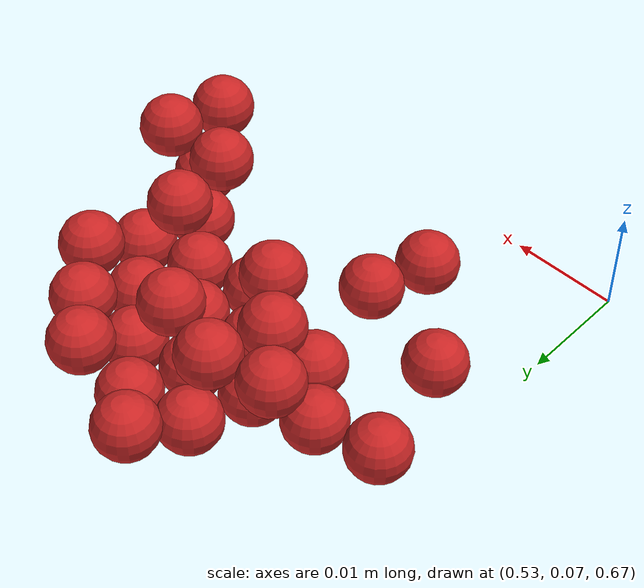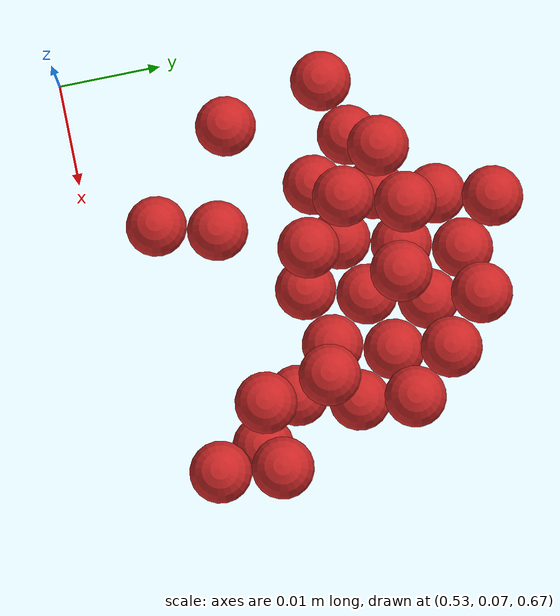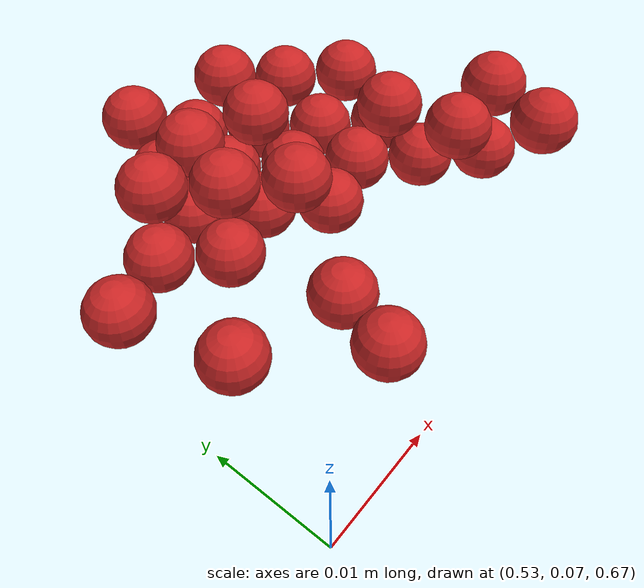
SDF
<sdf version="1.4">
 <world name="default">
  <model name="ground_plane">
   <static>1</static>
   <link name="link">
    <collision name="collision">
     <geometry><plane><normal>0 0 1</normal><size>100 100</size></plane></geometry>
     <surface><friction><ode><mu>100</mu><mu2>50</mu2></ode></friction></surface>
    </collision>
    <visual name="visual">
     <cast_shadows>0</cast_shadows>
     <geometry><plane><normal>0 0 1</normal><size>100 100</size></plane></geometry>
     <material>
      <script><uri>file://media/materials/scripts/gazebo.material</uri><name>Gazebo/Grey</name></script>
     </material>
    </visual>
    <velocity_decay><linear>0</linear><angular>0</angular></velocity_decay>
   </link>
  </model>
  <model name="sphere3">
   <pose>0.017734 0.010482 -0.021147 -0.000144 0.000294 -0.000125</pose>
   <link name="link">
    <pose>0.552545 0.067517 0.694885 0 -0 0</pose>
    <inertial>
     <mass>1e-08</mass>
     <inertia><ixx>4e-08</ixx><ixy>0</ixy><ixz>0</ixz><iyy>4e-08</iyy><iyz>0</iyz><izz>4e-08</izz></inertia>
    </inertial>
    <collision name="collision">
     <surface>
      <bounce><restitution_coefficient>0.5</restitution_coefficient><threshold>0</threshold></bounce>
      <contact><ode><kp>1e+08</kp><kd>1</kd></ode></contact>
      <friction><ode><mu>1e-06</mu><mu2>1e-06</mu2></ode></friction>
     </surface>
     <geometry><sphere><radius>0.003</radius></sphere></geometry>
    </collision>
    <visual name="visual">
     <geometry><sphere><radius>0.003</radius></sphere></geometry>
     <material>
      <script><uri>file://media/materials/scripts/gazebo.material</uri><name>Gazebo/Red</name></script>
     </material>
    </visual>
    <velocity_decay><linear>0</linear><angular>0</angular></velocity_decay>
   </link>
   <static>0</static>
  </model>
  <model name="sphere7">
   <pose>0.018692 0.010598 -0.02054 0.000226 0.000135 -8.8e-05</pose>
   <link name="link">
    <pose>0.552545 0.073517 0.694885 0 -0 0</pose>
    <inertial>
     <mass>1e-08</mass>
     <inertia><ixx>4e-08</ixx><ixy>0</ixy><ixz>0</ixz><iyy>4e-08</iyy><iyz>0</iyz><izz>4e-08</izz></inertia>
    </inertial>
    <collision name="collision">
     <surface>
      <bounce><restitution_coefficient>0.5</restitution_coefficient><threshold>0</threshold></bounce>
      <contact><ode><kp>1e+08</kp><kd>1</kd></ode></contact>
      <friction><ode><mu>1e-06</mu><mu2>1e-06</mu2></ode></friction>
     </surface>
     <geometry><sphere><radius>0.003</radius></sphere></geometry>
    </collision>
    <visual name="visual">
     <geometry><sphere><radius>0.003</radius></sphere></geometry>
     <material>
      <script><uri>file://media/materials/scripts/gazebo.material</uri><name>Gazebo/Red</name></script>
     </material>
    </visual>
    <velocity_decay><linear>0</linear><angular>0</angular></velocity_decay>
   </link>
   <static>0</static>
  </model>
  <model name="sphere9">
   <pose>0.004028 0.012873 -0.026133 -4.2e-05 -0.000319 1.65436e-24</pose>
   <link name="link">
    <pose>0.540545 0.079517 0.694885 0 -0 0</pose>
    <inertial>
     <mass>1e-08</mass>
     <inertia><ixx>4e-08</ixx><ixy>0</ixy><ixz>0</ixz><iyy>4e-08</iyy><iyz>0</iyz><izz>4e-08</izz></inertia>
    </inertial>
    <collision name="collision">
     <surface>
      <bounce><restitution_coefficient>0.5</restitution_coefficient><threshold>0</threshold></bounce>
      <contact><ode><kp>1e+08</kp><kd>1</kd></ode></contact>
      <friction><ode><mu>1e-06</mu><mu2>1e-06</mu2></ode></friction>
     </surface>
     <geometry><sphere><radius>0.003</radius></sphere></geometry>
    </collision>
    <visual name="visual">
     <geometry><sphere><radius>0.003</radius></sphere></geometry>
     <material>
      <script><uri>file://media/materials/scripts/gazebo.material</uri><name>Gazebo/Red</name></script>
     </material>
    </visual>
    <velocity_decay><linear>0</linear><angular>0</angular></velocity_decay>
   </link>
   <static>0</static>
  </model>
  <model name="sphere11">
   <pose>0.013849 0.017939 -0.022685 -9.7e-05 0.000891 0.000489</pose>
   <link name="link">
    <pose>0.552545 0.079517 0.694885 0 -0 0</pose>
    <inertial>
     <mass>1e-08</mass>
     <inertia><ixx>4e-08</ixx><ixy>0</ixy><ixz>0</ixz><iyy>4e-08</iyy><iyz>0</iyz><izz>4e-08</izz></inertia>
    </inertial>
    <collision name="collision">
     <surface>
      <bounce><restitution_coefficient>0.5</restitution_coefficient><threshold>0</threshold></bounce>
      <contact><ode><kp>1e+08</kp><kd>1</kd></ode></contact>
      <friction><ode><mu>1e-06</mu><mu2>1e-06</mu2></ode></friction>
     </surface>
     <geometry><sphere><radius>0.003</radius></sphere></geometry>
    </collision>
    <visual name="visual">
     <geometry><sphere><radius>0.003</radius></sphere></geometry>
     <material>
      <script><uri>file://media/materials/scripts/gazebo.material</uri><name>Gazebo/Red</name></script>
     </material>
    </visual>
    <velocity_decay><linear>0</linear><angular>0</angular></velocity_decay>
   </link>
   <static>0</static>
  </model>
  <model name="sphere14">
   <pose>0.002752 0.023182 -0.023402 -0.000726 1.1e-05 -8.3e-05</pose>
   <link name="link">
    <pose>0.546545 0.085517 0.694885 0 -0 0</pose>
    <inertial>
     <mass>1e-08</mass>
     <inertia><ixx>4e-08</ixx><ixy>0</ixy><ixz>0</ixz><iyy>4e-08</iyy><iyz>0</iyz><izz>4e-08</izz></inertia>
    </inertial>
    <collision name="collision">
     <surface>
      <bounce><restitution_coefficient>0.5</restitution_coefficient><threshold>0</threshold></bounce>
      <contact><ode><kp>1e+08</kp><kd>1</kd></ode></contact>
      <friction><ode><mu>1e-06</mu><mu2>1e-06</mu2></ode></friction>
     </surface>
     <geometry><sphere><radius>0.003</radius></sphere></geometry>
    </collision>
    <visual name="visual">
     <geometry><sphere><radius>0.003</radius></sphere></geometry>
     <material>
      <script><uri>file://media/materials/scripts/gazebo.material</uri><name>Gazebo/Red</name></script>
     </material>
    </visual>
    <velocity_decay><linear>0</linear><angular>0</angular></velocity_decay>
   </link>
   <static>0</static>
  </model>
  <model name="sphere15">
   <pose>0.010319 0.016833 -0.023531 1.2e-05 8.4e-05 -0.000222</pose>
   <link name="link">
    <pose>0.552545 0.085517 0.694885 0 -0 0</pose>
    <inertial>
     <mass>1e-08</mass>
     <inertia><ixx>4e-08</ixx><ixy>0</ixy><ixz>0</ixz><iyy>4e-08</iyy><iyz>0</iyz><izz>4e-08</izz></inertia>
    </inertial>
    <collision name="collision">
     <surface>
      <bounce><restitution_coefficient>0.5</restitution_coefficient><threshold>0</threshold></bounce>
      <contact><ode><kp>1e+08</kp><kd>1</kd></ode></contact>
      <friction><ode><mu>1e-06</mu><mu2>1e-06</mu2></ode></friction>
     </surface>
     <geometry><sphere><radius>0.003</radius></sphere></geometry>
    </collision>
    <visual name="visual">
     <geometry><sphere><radius>0.003</radius></sphere></geometry>
     <material>
      <script><uri>file://media/materials/scripts/gazebo.material</uri><name>Gazebo/Red</name></script>
     </material>
    </visual>
    <velocity_decay><linear>0</linear><angular>0</angular></velocity_decay>
   </link>
   <static>0</static>
  </model>
  <model name="sphere26">
   <pose>0.007331 0.010245 -0.031635 0.000214 0.000681 0</pose>
   <link name="link">
    <pose>0.546545 0.079517 0.700885 0 -0 0</pose>
    <inertial>
     <mass>1e-08</mass>
     <inertia><ixx>4e-08</ixx><ixy>0</ixy><ixz>0</ixz><iyy>4e-08</iyy><iyz>0</iyz><izz>4e-08</izz></inertia>
    </inertial>
    <collision name="collision">
     <surface>
      <bounce><restitution_coefficient>0.5</restitution_coefficient><threshold>0</threshold></bounce>
      <contact><ode><kp>1e+08</kp><kd>1</kd></ode></contact>
      <friction><ode><mu>1e-06</mu><mu2>1e-06</mu2></ode></friction>
     </surface>
     <geometry><sphere><radius>0.003</radius></sphere></geometry>
    </collision>
    <visual name="visual">
     <geometry><sphere><radius>0.003</radius></sphere></geometry>
     <material>
      <script><uri>file://media/materials/scripts/gazebo.material</uri><name>Gazebo/Red</name></script>
     </material>
    </visual>
    <velocity_decay><linear>0</linear><angular>0</angular></velocity_decay>
   </link>
   <static>0</static>
  </model>
  <model name="sphere31">
   <pose>0.009113 0.011439 -0.032021 0.0001 0.000183 -3e-06</pose>
   <link name="link">
    <pose>0.552545 0.085517 0.700885 0 -0 0</pose>
    <inertial>
     <mass>1e-08</mass>
     <inertia><ixx>4e-08</ixx><ixy>0</ixy><ixz>0</ixz><iyy>4e-08</iyy><iyz>0</iyz><izz>4e-08</izz></inertia>
    </inertial>
    <collision name="collision">
     <surface>
      <bounce><restitution_coefficient>0.5</restitution_coefficient><threshold>0</threshold></bounce>
      <contact><ode><kp>1e+08</kp><kd>1</kd></ode></contact>
      <friction><ode><mu>1e-06</mu><mu2>1e-06</mu2></ode></friction>
     </surface>
     <geometry><sphere><radius>0.003</radius></sphere></geometry>
    </collision>
    <visual name="visual">
     <geometry><sphere><radius>0.003</radius></sphere></geometry>
     <material>
      <script><uri>file://media/materials/scripts/gazebo.material</uri><name>Gazebo/Red</name></script>
     </material>
    </visual>
    <velocity_decay><linear>0</linear><angular>0</angular></velocity_decay>
   </link>
   <static>0</static>
  </model>
  <model name="sphere35">
   <pose>0.012338 0.016035 -0.033068 0 -0 0</pose>
   <link name="link">
    <pose>0.552545 0.067517 0.706885 0 -0 0</pose>
    <inertial>
     <mass>1e-08</mass>
     <inertia><ixx>4e-08</ixx><ixy>0</ixy><ixz>0</ixz><iyy>4e-08</iyy><iyz>0</iyz><izz>4e-08</izz></inertia>
    </inertial>
    <collision name="collision">
     <surface>
      <bounce><restitution_coefficient>0.5</restitution_coefficient><threshold>0</threshold></bounce>
      <contact><ode><kp>1e+08</kp><kd>1</kd></ode></contact>
      <friction><ode><mu>1e-06</mu><mu2>1e-06</mu2></ode></friction>
     </surface>
     <geometry><sphere><radius>0.003</radius></sphere></geometry>
    </collision>
    <visual name="visual">
     <geometry><sphere><radius>0.003</radius></sphere></geometry>
     <material>
      <script><uri>file://media/materials/scripts/gazebo.material</uri><name>Gazebo/Red</name></script>
     </material>
    </visual>
    <velocity_decay><linear>0</linear><angular>0</angular></velocity_decay>
   </link>
   <static>0</static>
  </model>
  <model name="sphere39">
   <pose>0.016184 0.008938 -0.037876 -0.000186 -0.000299 -0.000136</pose>
   <link name="link">
    <pose>0.552545 0.073517 0.706885 0 -0 0</pose>
    <inertial>
     <mass>1e-08</mass>
     <inertia><ixx>4e-08</ixx><ixy>0</ixy><ixz>0</ixz><iyy>4e-08</iyy><iyz>0</iyz><izz>4e-08</izz></inertia>
    </inertial>
    <collision name="collision">
     <surface>
      <bounce><restitution_coefficient>0.5</restitution_coefficient><threshold>0</threshold></bounce>
      <contact><ode><kp>1e+08</kp><kd>1</kd></ode></contact>
      <friction><ode><mu>1e-06</mu><mu2>1e-06</mu2></ode></friction>
     </surface>
     <geometry><sphere><radius>0.003</radius></sphere></geometry>
    </collision>
    <visual name="visual">
     <geometry><sphere><radius>0.003</radius></sphere></geometry>
     <material>
      <script><uri>file://media/materials/scripts/gazebo.material</uri><name>Gazebo/Red</name></script>
     </material>
    </visual>
    <velocity_decay><linear>0</linear><angular>0</angular></velocity_decay>
   </link>
   <static>0</static>
  </model>
  <model name="sphere41">
   <pose>-0.000329 0.017163 -0.03798 -3.9e-05 -8.3e-05 0</pose>
   <link name="link">
    <pose>0.540545 0.079517 0.706885 0 -0 0</pose>
    <inertial>
     <mass>1e-08</mass>
     <inertia><ixx>4e-08</ixx><ixy>0</ixy><ixz>0</ixz><iyy>4e-08</iyy><iyz>0</iyz><izz>4e-08</izz></inertia>
    </inertial>
    <collision name="collision">
     <surface>
      <bounce><restitution_coefficient>0.5</restitution_coefficient><threshold>0</threshold></bounce>
      <contact><ode><kp>1e+08</kp><kd>1</kd></ode></contact>
      <friction><ode><mu>1e-06</mu><mu2>1e-06</mu2></ode></friction>
     </surface>
     <geometry><sphere><radius>0.003</radius></sphere></geometry>
    </collision>
    <visual name="visual">
     <geometry><sphere><radius>0.003</radius></sphere></geometry>
     <material>
      <script><uri>file://media/materials/scripts/gazebo.material</uri><name>Gazebo/Red</name></script>
     </material>
    </visual>
    <velocity_decay><linear>0</linear><angular>0</angular></velocity_decay>
   </link>
   <static>0</static>
  </model>
  <model name="sphere42">
   <pose>-0.000703 0.018667 -0.037872 -2e-05 0.00017 4.1359e-25</pose>
   <link name="link">
    <pose>0.546545 0.079517 0.706885 0 -0 0</pose>
    <inertial>
     <mass>1e-08</mass>
     <inertia><ixx>4e-08</ixx><ixy>0</ixy><ixz>0</ixz><iyy>4e-08</iyy><iyz>0</iyz><izz>4e-08</izz></inertia>
    </inertial>
    <collision name="collision">
     <surface>
      <bounce><restitution_coefficient>0.5</restitution_coefficient><threshold>0</threshold></bounce>
      <contact><ode><kp>1e+08</kp><kd>1</kd></ode></contact>
      <friction><ode><mu>1e-06</mu><mu2>1e-06</mu2></ode></friction>
     </surface>
     <geometry><sphere><radius>0.003</radius></sphere></geometry>
    </collision>
    <visual name="visual">
     <geometry><sphere><radius>0.003</radius></sphere></geometry>
     <material>
      <script><uri>file://media/materials/scripts/gazebo.material</uri><name>Gazebo/Red</name></script>
     </material>
    </visual>
    <velocity_decay><linear>0</linear><angular>0</angular></velocity_decay>
   </link>
   <static>0</static>
  </model>
  <model name="sphere43">
   <pose>0.013343 0.01334 -0.037932 0.000344 0.000123 -4.5e-05</pose>
   <link name="link">
    <pose>0.552545 0.079517 0.706885 0 -0 0</pose>
    <inertial>
     <mass>1e-08</mass>
     <inertia><ixx>4e-08</ixx><ixy>0</ixy><ixz>0</ixz><iyy>4e-08</iyy><iyz>0</iyz><izz>4e-08</izz></inertia>
    </inertial>
    <collision name="collision">
     <surface>
      <bounce><restitution_coefficient>0.5</restitution_coefficient><threshold>0</threshold></bounce>
      <contact><ode><kp>1e+08</kp><kd>1</kd></ode></contact>
      <friction><ode><mu>1e-06</mu><mu2>1e-06</mu2></ode></friction>
     </surface>
     <geometry><sphere><radius>0.003</radius></sphere></geometry>
    </collision>
    <visual name="visual">
     <geometry><sphere><radius>0.003</radius></sphere></geometry>
     <material>
      <script><uri>file://media/materials/scripts/gazebo.material</uri><name>Gazebo/Red</name></script>
     </material>
    </visual>
    <velocity_decay><linear>0</linear><angular>0</angular></velocity_decay>
   </link>
   <static>0</static>
  </model>
  <model name="sphere47">
   <pose>0.005965 0.020591 -0.034751 7.5e-05 -5.3e-05 9.5e-05</pose>
   <link name="link">
    <pose>0.552545 0.085517 0.706885 0 -0 0</pose>
    <inertial>
     <mass>1e-08</mass>
     <inertia><ixx>4e-08</ixx><ixy>0</ixy><ixz>0</ixz><iyy>4e-08</iyy><iyz>0</iyz><izz>4e-08</izz></inertia>
    </inertial>
    <collision name="collision">
     <surface>
      <bounce><restitution_coefficient>0.5</restitution_coefficient><threshold>0</threshold></bounce>
      <contact><ode><kp>1e+08</kp><kd>1</kd></ode></contact>
      <friction><ode><mu>1e-06</mu><mu2>1e-06</mu2></ode></friction>
     </surface>
     <geometry><sphere><radius>0.003</radius></sphere></geometry>
    </collision>
    <visual name="visual">
     <geometry><sphere><radius>0.003</radius></sphere></geometry>
     <material>
      <script><uri>file://media/materials/scripts/gazebo.material</uri><name>Gazebo/Red</name></script>
     </material>
    </visual>
    <velocity_decay><linear>0</linear><angular>0</angular></velocity_decay>
   </link>
   <static>0</static>
  </model>
  <model name="sphere58">
   <pose>0.003733 0.014275 -0.044015 -0.00016 -0.00016 3.30872e-24</pose>
   <link name="link">
    <pose>0.546545 0.079517 0.712885 0 -0 0</pose>
    <inertial>
     <mass>1e-08</mass>
     <inertia><ixx>4e-08</ixx><ixy>0</ixy><ixz>0</ixz><iyy>4e-08</iyy><iyz>0</iyz><izz>4e-08</izz></inertia>
    </inertial>
    <collision name="collision">
     <surface>
      <bounce><restitution_coefficient>0.5</restitution_coefficient><threshold>0</threshold></bounce>
      <contact><ode><kp>1e+08</kp><kd>1</kd></ode></contact>
      <friction><ode><mu>1e-06</mu><mu2>1e-06</mu2></ode></friction>
     </surface>
     <geometry><sphere><radius>0.003</radius></sphere></geometry>
    </collision>
    <visual name="visual">
     <geometry><sphere><radius>0.003</radius></sphere></geometry>
     <material>
      <script><uri>file://media/materials/scripts/gazebo.material</uri><name>Gazebo/Red</name></script>
     </material>
    </visual>
    <velocity_decay><linear>0</linear><angular>0</angular></velocity_decay>
   </link>
   <static>0</static>
  </model>
  <model name="sphere59">
   <pose>0.007684 0.011347 -0.044025 -0.000319 -8.8e-05 3.30872e-24</pose>
   <link name="link">
    <pose>0.552545 0.079517 0.712885 0 -0 0</pose>
    <inertial>
     <mass>1e-08</mass>
     <inertia><ixx>4e-08</ixx><ixy>0</ixy><ixz>0</ixz><iyy>4e-08</iyy><iyz>0</iyz><izz>4e-08</izz></inertia>
    </inertial>
    <collision name="collision">
     <surface>
      <bounce><restitution_coefficient>0.5</restitution_coefficient><threshold>0</threshold></bounce>
      <contact><ode><kp>1e+08</kp><kd>1</kd></ode></contact>
      <friction><ode><mu>1e-06</mu><mu2>1e-06</mu2></ode></friction>
     </surface>
     <geometry><sphere><radius>0.003</radius></sphere></geometry>
    </collision>
    <visual name="visual">
     <geometry><sphere><radius>0.003</radius></sphere></geometry>
     <material>
      <script><uri>file://media/materials/scripts/gazebo.material</uri><name>Gazebo/Red</name></script>
     </material>
    </visual>
    <velocity_decay><linear>0</linear><angular>0</angular></velocity_decay>
   </link>
   <static>0</static>
  </model>
  <model name="sphere62">
   <pose>0.001558 0.018281 -0.044327 -0.000231 -0.000729 2.3e-05</pose>
   <link name="link">
    <pose>0.546545 0.085517 0.712885 0 -0 0</pose>
    <inertial>
     <mass>1e-08</mass>
     <inertia><ixx>4e-08</ixx><ixy>0</ixy><ixz>0</ixz><iyy>4e-08</iyy><iyz>0</iyz><izz>4e-08</izz></inertia>
    </inertial>
    <collision name="collision">
     <surface>
      <bounce><restitution_coefficient>0.5</restitution_coefficient><threshold>0</threshold></bounce>
      <contact><ode><kp>1e+08</kp><kd>1</kd></ode></contact>
      <friction><ode><mu>1e-06</mu><mu2>1e-06</mu2></ode></friction>
     </surface>
     <geometry><sphere><radius>0.003</radius></sphere></geometry>
    </collision>
    <visual name="visual">
     <geometry><sphere><radius>0.003</radius></sphere></geometry>
     <material>
      <script><uri>file://media/materials/scripts/gazebo.material</uri><name>Gazebo/Red</name></script>
     </material>
    </visual>
    <velocity_decay><linear>0</linear><angular>0</angular></velocity_decay>
   </link>
   <static>0</static>
  </model>
  <model name="sphere63">
   <pose>0.000496 0.020097 -0.043603 0.000287 0.000506 8.9e-05</pose>
   <link name="link">
    <pose>0.552545 0.085517 0.712885 0 -0 0</pose>
    <inertial>
     <mass>1e-08</mass>
     <inertia><ixx>4e-08</ixx><ixy>0</ixy><ixz>0</ixz><iyy>4e-08</iyy><iyz>0</iyz><izz>4e-08</izz></inertia>
    </inertial>
    <collision name="collision">
     <surface>
      <bounce><restitution_coefficient>0.5</restitution_coefficient><threshold>0</threshold></bounce>
      <contact><ode><kp>1e+08</kp><kd>1</kd></ode></contact>
      <friction><ode><mu>1e-06</mu><mu2>1e-06</mu2></ode></friction>
     </surface>
     <geometry><sphere><radius>0.003</radius></sphere></geometry>
    </collision>
    <visual name="visual">
     <geometry><sphere><radius>0.003</radius></sphere></geometry>
     <material>
      <script><uri>file://media/materials/scripts/gazebo.material</uri><name>Gazebo/Red</name></script>
     </material>
    </visual>
    <velocity_decay><linear>0</linear><angular>0</angular></velocity_decay>
   </link>
   <static>0</static>
  </model>
  <model name="sphere68">
   <pose>0.002354 0.011518 -0.049911 -0.000164 2.8e-05 0</pose>
   <link name="link">
    <pose>0.534545 0.073517 0.718885 0 -0 0</pose>
    <inertial>
     <mass>1e-08</mass>
     <inertia><ixx>4e-08</ixx><ixy>0</ixy><ixz>0</ixz><iyy>4e-08</iyy><iyz>0</iyz><izz>4e-08</izz></inertia>
    </inertial>
    <collision name="collision">
     <surface>
      <bounce><restitution_coefficient>0.5</restitution_coefficient><threshold>0</threshold></bounce>
      <contact><ode><kp>1e+08</kp><kd>1</kd></ode></contact>
      <friction><ode><mu>1e-06</mu><mu2>1e-06</mu2></ode></friction>
     </surface>
     <geometry><sphere><radius>0.003</radius></sphere></geometry>
    </collision>
    <visual name="visual">
     <geometry><sphere><radius>0.003</radius></sphere></geometry>
     <material>
      <script><uri>file://media/materials/scripts/gazebo.material</uri><name>Gazebo/Red</name></script>
     </material>
    </visual>
    <velocity_decay><linear>0</linear><angular>0</angular></velocity_decay>
   </link>
   <static>0</static>
  </model>
  <model name="sphere69">
   <pose>0.006361 0.008845 -0.049933 2.2e-05 3e-05 0</pose>
   <link name="link">
    <pose>0.540545 0.073517 0.718885 0 -0 0</pose>
    <inertial>
     <mass>1e-08</mass>
     <inertia><ixx>4e-08</ixx><ixy>0</ixy><ixz>0</ixz><iyy>4e-08</iyy><iyz>0</iyz><izz>4e-08</izz></inertia>
    </inertial>
    <collision name="collision">
     <surface>
      <bounce><restitution_coefficient>0.5</restitution_coefficient><threshold>0</threshold></bounce>
      <contact><ode><kp>1e+08</kp><kd>1</kd></ode></contact>
      <friction><ode><mu>1e-06</mu><mu2>1e-06</mu2></ode></friction>
     </surface>
     <geometry><sphere><radius>0.003</radius></sphere></geometry>
    </collision>
    <visual name="visual">
     <geometry><sphere><radius>0.003</radius></sphere></geometry>
     <material>
      <script><uri>file://media/materials/scripts/gazebo.material</uri><name>Gazebo/Red</name></script>
     </material>
    </visual>
    <velocity_decay><linear>0</linear><angular>0</angular></velocity_decay>
   </link>
   <static>0</static>
  </model>
  <model name="sphere71">
   <pose>0.011764 0.013661 -0.050096 0.000536 4.2e-05 -3.30872e-24</pose>
   <link name="link">
    <pose>0.552545 0.073517 0.718885 0 -0 0</pose>
    <inertial>
     <mass>1e-08</mass>
     <inertia><ixx>4e-08</ixx><ixy>0</ixy><ixz>0</ixz><iyy>4e-08</iyy><iyz>0</iyz><izz>4e-08</izz></inertia>
    </inertial>
    <collision name="collision">
     <surface>
      <bounce><restitution_coefficient>0.5</restitution_coefficient><threshold>0</threshold></bounce>
      <contact><ode><kp>1e+08</kp><kd>1</kd></ode></contact>
      <friction><ode><mu>1e-06</mu><mu2>1e-06</mu2></ode></friction>
     </surface>
     <geometry><sphere><radius>0.003</radius></sphere></geometry>
    </collision>
    <visual name="visual">
     <geometry><sphere><radius>0.003</radius></sphere></geometry>
     <material>
      <script><uri>file://media/materials/scripts/gazebo.material</uri><name>Gazebo/Red</name></script>
     </material>
    </visual>
    <velocity_decay><linear>0</linear><angular>0</angular></velocity_decay>
   </link>
   <static>0</static>
  </model>
  <model name="sphere73">
   <pose>0.00628 0.015306 -0.045071 0 -0 0</pose>
   <link name="link">
    <pose>0.540545 0.079517 0.718885 0 -0 0</pose>
    <inertial>
     <mass>1e-08</mass>
     <inertia><ixx>4e-08</ixx><ixy>0</ixy><ixz>0</ixz><iyy>4e-08</iyy><iyz>0</iyz><izz>4e-08</izz></inertia>
    </inertial>
    <collision name="collision">
     <surface>
      <bounce><restitution_coefficient>0.5</restitution_coefficient><threshold>0</threshold></bounce>
      <contact><ode><kp>1e+08</kp><kd>1</kd></ode></contact>
      <friction><ode><mu>1e-06</mu><mu2>1e-06</mu2></ode></friction>
     </surface>
     <geometry><sphere><radius>0.003</radius></sphere></geometry>
    </collision>
    <visual name="visual">
     <geometry><sphere><radius>0.003</radius></sphere></geometry>
     <material>
      <script><uri>file://media/materials/scripts/gazebo.material</uri><name>Gazebo/Red</name></script>
     </material>
    </visual>
    <velocity_decay><linear>0</linear><angular>0</angular></velocity_decay>
   </link>
   <static>0</static>
  </model>
  <model name="sphere74">
   <pose>0.009365 0.015879 -0.049897 1.3e-05 9.5e-05 2.06795e-25</pose>
   <link name="link">
    <pose>0.546545 0.079517 0.718885 0 -0 0</pose>
    <inertial>
     <mass>1e-08</mass>
     <inertia><ixx>4e-08</ixx><ixy>0</ixy><ixz>0</ixz><iyy>4e-08</iyy><iyz>0</iyz><izz>4e-08</izz></inertia>
    </inertial>
    <collision name="collision">
     <surface>
      <bounce><restitution_coefficient>0.5</restitution_coefficient><threshold>0</threshold></bounce>
      <contact><ode><kp>1e+08</kp><kd>1</kd></ode></contact>
      <friction><ode><mu>1e-06</mu><mu2>1e-06</mu2></ode></friction>
     </surface>
     <geometry><sphere><radius>0.003</radius></sphere></geometry>
    </collision>
    <visual name="visual">
     <geometry><sphere><radius>0.003</radius></sphere></geometry>
     <material>
      <script><uri>file://media/materials/scripts/gazebo.material</uri><name>Gazebo/Red</name></script>
     </material>
    </visual>
    <velocity_decay><linear>0</linear><angular>0</angular></velocity_decay>
   </link>
   <static>0</static>
  </model>
  <model name="sphere75">
   <pose>0.010951 0.010553 -0.045125 0 -0 0</pose>
   <link name="link">
    <pose>0.552545 0.079517 0.718885 0 -0 0</pose>
    <inertial>
     <mass>1e-08</mass>
     <inertia><ixx>4e-08</ixx><ixy>0</ixy><ixz>0</ixz><iyy>4e-08</iyy><iyz>0</iyz><izz>4e-08</izz></inertia>
    </inertial>
    <collision name="collision">
     <surface>
      <bounce><restitution_coefficient>0.5</restitution_coefficient><threshold>0</threshold></bounce>
      <contact><ode><kp>1e+08</kp><kd>1</kd></ode></contact>
      <friction><ode><mu>1e-06</mu><mu2>1e-06</mu2></ode></friction>
     </surface>
     <geometry><sphere><radius>0.003</radius></sphere></geometry>
    </collision>
    <visual name="visual">
     <geometry><sphere><radius>0.003</radius></sphere></geometry>
     <material>
      <script><uri>file://media/materials/scripts/gazebo.material</uri><name>Gazebo/Red</name></script>
     </material>
    </visual>
    <velocity_decay><linear>0</linear><angular>0</angular></velocity_decay>
   </link>
   <static>0</static>
  </model>
  <model name="sphere76">
   <pose>-0.000391 0.009508 -0.049849 -0.000269 0.000264 1.32349e-23</pose>
   <link name="link">
    <pose>0.534545 0.085517 0.718885 0 -0 0</pose>
    <inertial>
     <mass>1e-08</mass>
     <inertia><ixx>4e-08</ixx><ixy>0</ixy><ixz>0</ixz><iyy>4e-08</iyy><iyz>0</iyz><izz>4e-08</izz></inertia>
    </inertial>
    <collision name="collision">
     <surface>
      <bounce><restitution_coefficient>0.5</restitution_coefficient><threshold>0</threshold></bounce>
      <contact><ode><kp>1e+08</kp><kd>1</kd></ode></contact>
      <friction><ode><mu>1e-06</mu><mu2>1e-06</mu2></ode></friction>
     </surface>
     <geometry><sphere><radius>0.003</radius></sphere></geometry>
    </collision>
    <visual name="visual">
     <geometry><sphere><radius>0.003</radius></sphere></geometry>
     <material>
      <script><uri>file://media/materials/scripts/gazebo.material</uri><name>Gazebo/Red</name></script>
     </material>
    </visual>
    <velocity_decay><linear>0</linear><angular>0</angular></velocity_decay>
   </link>
   <static>0</static>
  </model>
  <model name="sphere77">
   <pose>0.002104 0.013615 -0.045048 0 -0 0</pose>
   <link name="link">
    <pose>0.540545 0.085517 0.718885 0 -0 0</pose>
    <inertial>
     <mass>1e-08</mass>
     <inertia><ixx>4e-08</ixx><ixy>0</ixy><ixz>0</ixz><iyy>4e-08</iyy><iyz>0</iyz><izz>4e-08</izz></inertia>
    </inertial>
    <collision name="collision">
     <surface>
      <bounce><restitution_coefficient>0.5</restitution_coefficient><threshold>0</threshold></bounce>
      <contact><ode><kp>1e+08</kp><kd>1</kd></ode></contact>
      <friction><ode><mu>1e-06</mu><mu2>1e-06</mu2></ode></friction>
     </surface>
     <geometry><sphere><radius>0.003</radius></sphere></geometry>
    </collision>
    <visual name="visual">
     <geometry><sphere><radius>0.003</radius></sphere></geometry>
     <material>
      <script><uri>file://media/materials/scripts/gazebo.material</uri><name>Gazebo/Red</name></script>
     </material>
    </visual>
    <velocity_decay><linear>0</linear><angular>0</angular></velocity_decay>
   </link>
   <static>0</static>
  </model>
  <model name="sphere78">
   <pose>0.001995 0.015063 -0.0451 0 -0 0</pose>
   <link name="link">
    <pose>0.546545 0.085517 0.718885 0 -0 0</pose>
    <inertial>
     <mass>1e-08</mass>
     <inertia><ixx>4e-08</ixx><ixy>0</ixy><ixz>0</ixz><iyy>4e-08</iyy><iyz>0</iyz><izz>4e-08</izz></inertia>
    </inertial>
    <collision name="collision">
     <surface>
      <bounce><restitution_coefficient>0.5</restitution_coefficient><threshold>0</threshold></bounce>
      <contact><ode><kp>1e+08</kp><kd>1</kd></ode></contact>
      <friction><ode><mu>1e-06</mu><mu2>1e-06</mu2></ode></friction>
     </surface>
     <geometry><sphere><radius>0.003</radius></sphere></geometry>
    </collision>
    <visual name="visual">
     <geometry><sphere><radius>0.003</radius></sphere></geometry>
     <material>
      <script><uri>file://media/materials/scripts/gazebo.material</uri><name>Gazebo/Red</name></script>
     </material>
    </visual>
    <velocity_decay><linear>0</linear><angular>0</angular></velocity_decay>
   </link>
   <static>0</static>
  </model>
  <model name="sphere79">
   <pose>0.00558 0.015079 -0.050349 -0.000813 -0.000748 -2.5e-05</pose>
   <link name="link">
    <pose>0.552545 0.085517 0.718885 0 -0 0</pose>
    <inertial>
     <mass>1e-08</mass>
     <inertia><ixx>4e-08</ixx><ixy>0</ixy><ixz>0</ixz><iyy>4e-08</iyy><iyz>0</iyz><izz>4e-08</izz></inertia>
    </inertial>
    <collision name="collision">
     <surface>
      <bounce><restitution_coefficient>0.5</restitution_coefficient><threshold>0</threshold></bounce>
      <contact><ode><kp>1e+08</kp><kd>1</kd></ode></contact>
      <friction><ode><mu>1e-06</mu><mu2>1e-06</mu2></ode></friction>
     </surface>
     <geometry><sphere><radius>0.003</radius></sphere></geometry>
    </collision>
    <visual name="visual">
     <geometry><sphere><radius>0.003</radius></sphere></geometry>
     <material>
      <script><uri>file://media/materials/scripts/gazebo.material</uri><name>Gazebo/Red</name></script>
     </material>
    </visual>
    <velocity_decay><linear>0</linear><angular>0</angular></velocity_decay>
   </link>
   <static>0</static>
  </model>
  <model name="sphere81">
   <pose>0.004693 0.009077 -0.055906 3.3e-05 9.4e-05 4.1359e-25</pose>
   <link name="link">
    <pose>0.540545 0.067517 0.724885 0 -0 0</pose>
    <inertial>
     <mass>1e-08</mass>
     <inertia><ixx>4e-08</ixx><ixy>0</ixy><ixz>0</ixz><iyy>4e-08</iyy><iyz>0</iyz><izz>4e-08</izz></inertia>
    </inertial>
    <collision name="collision">
     <surface>
      <bounce><restitution_coefficient>0.5</restitution_coefficient><threshold>0</threshold></bounce>
      <contact><ode><kp>1e+08</kp><kd>1</kd></ode></contact>
      <friction><ode><mu>1e-06</mu><mu2>1e-06</mu2></ode></friction>
     </surface>
     <geometry><sphere><radius>0.003</radius></sphere></geometry>
    </collision>
    <visual name="visual">
     <geometry><sphere><radius>0.003</radius></sphere></geometry>
     <material>
      <script><uri>file://media/materials/scripts/gazebo.material</uri><name>Gazebo/Red</name></script>
     </material>
    </visual>
    <velocity_decay><linear>0</linear><angular>0</angular></velocity_decay>
   </link>
   <static>0</static>
  </model>
  <model name="sphere90">
   <pose>0.004517 0.011029 -0.051062 0 -0 0</pose>
   <link name="link">
    <pose>0.546545 0.079517 0.724885 0 -0 0</pose>
    <inertial>
     <mass>1e-08</mass>
     <inertia><ixx>4e-08</ixx><ixy>0</ixy><ixz>0</ixz><iyy>4e-08</iyy><iyz>0</iyz><izz>4e-08</izz></inertia>
    </inertial>
    <collision name="collision">
     <surface>
      <bounce><restitution_coefficient>0.5</restitution_coefficient><threshold>0</threshold></bounce>
      <contact><ode><kp>1e+08</kp><kd>1</kd></ode></contact>
      <friction><ode><mu>1e-06</mu><mu2>1e-06</mu2></ode></friction>
     </surface>
     <geometry><sphere><radius>0.003</radius></sphere></geometry>
    </collision>
    <visual name="visual">
     <geometry><sphere><radius>0.003</radius></sphere></geometry>
     <material>
      <script><uri>file://media/materials/scripts/gazebo.material</uri><name>Gazebo/Red</name></script>
     </material>
    </visual>
    <velocity_decay><linear>0</linear><angular>0</angular></velocity_decay>
   </link>
   <static>0</static>
  </model>
  <model name="sphere94">
   <pose>0.004486 0.014536 -0.055535 0.000508 0.001026 0</pose>
   <link name="link">
    <pose>0.546545 0.085517 0.724885 0 -0 0</pose>
    <inertial>
     <mass>1e-08</mass>
     <inertia><ixx>4e-08</ixx><ixy>0</ixy><ixz>0</ixz><iyy>4e-08</iyy><iyz>0</iyz><izz>4e-08</izz></inertia>
    </inertial>
    <collision name="collision">
     <surface>
      <bounce><restitution_coefficient>0.5</restitution_coefficient><threshold>0</threshold></bounce>
      <contact><ode><kp>1e+08</kp><kd>1</kd></ode></contact>
      <friction><ode><mu>1e-06</mu><mu2>1e-06</mu2></ode></friction>
     </surface>
     <geometry><sphere><radius>0.003</radius></sphere></geometry>
    </collision>
    <visual name="visual">
     <geometry><sphere><radius>0.003</radius></sphere></geometry>
     <material>
      <script><uri>file://media/materials/scripts/gazebo.material</uri><name>Gazebo/Red</name></script>
     </material>
    </visual>
    <velocity_decay><linear>0</linear><angular>0</angular></velocity_decay>
   </link>
   <static>0</static>
  </model>
  <model name="sphere95">
   <pose>0.002501 0.013291 -0.051109 0 -0 0</pose>
   <link name="link">
    <pose>0.552545 0.085517 0.724885 0 -0 0</pose>
    <inertial>
     <mass>1e-08</mass>
     <inertia><ixx>4e-08</ixx><ixy>0</ixy><ixz>0</ixz><iyy>4e-08</iyy><iyz>0</iyz><izz>4e-08</izz></inertia>
    </inertial>
    <collision name="collision">
     <surface>
      <bounce><restitution_coefficient>0.5</restitution_coefficient><threshold>0</threshold></bounce>
      <contact><ode><kp>1e+08</kp><kd>1</kd></ode></contact>
      <friction><ode><mu>1e-06</mu><mu2>1e-06</mu2></ode></friction>
     </surface>
     <geometry><sphere><radius>0.003</radius></sphere></geometry>
    </collision>
    <visual name="visual">
     <geometry><sphere><radius>0.003</radius></sphere></geometry>
     <material>
      <script><uri>file://media/materials/scripts/gazebo.material</uri><name>Gazebo/Red</name></script>
     </material>
    </visual>
    <velocity_decay><linear>0</linear><angular>0</angular></velocity_decay>
   </link>
   <static>0</static>
  </model>
 </world>
</sdf>
